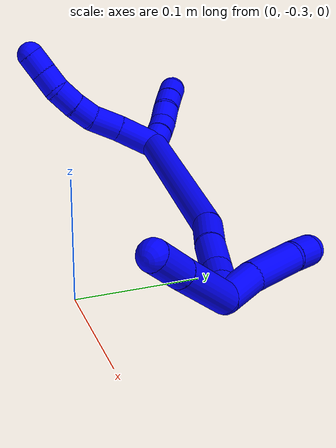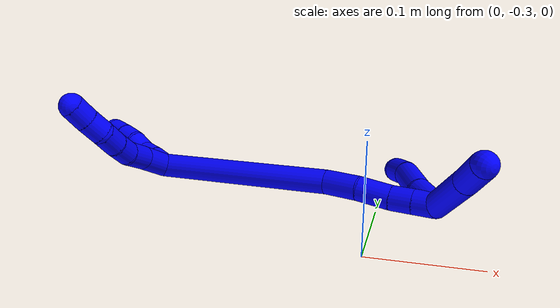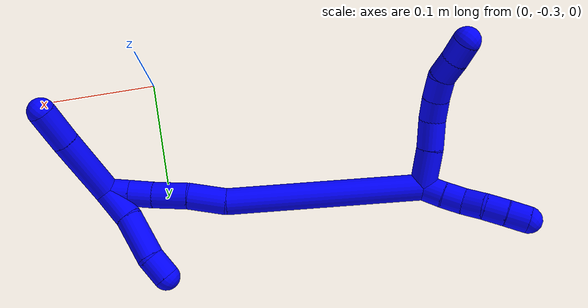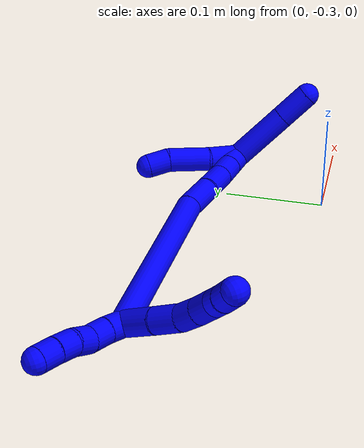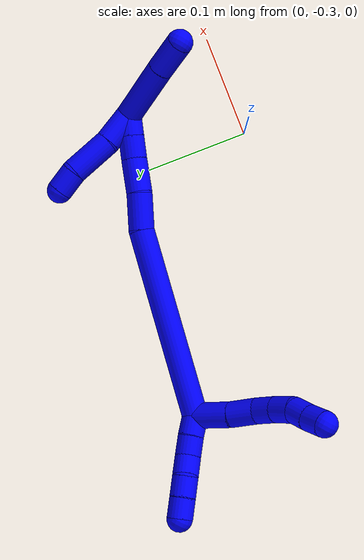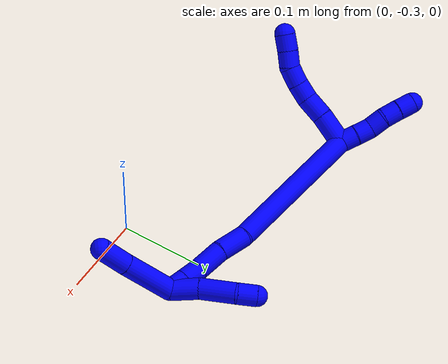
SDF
<sdf version="1.7">
 <world name="default">
  <model name="1">
   <static>0</static>
   <link name="1">
    <collision name="collision-cylinder-e_1_2_8">
     <pose>-0.004849 0.01581 0.009548 -1.0275 -0.256759 0.145432</pose>
     <geometry><cylinder><radius>0.0125</radius><length>0.038191</length></cylinder></geometry>
     <surface>
      <friction><ode><mu>1.16</mu><mu2>1.16</mu2><slip1>0</slip1><slip2>0</slip2></ode></friction>
      <contact><ode><kp>1e+06</kp><kd>1</kd><max_vel>0</max_vel><min_depth>0.001</min_depth></ode></contact>
     </surface>
    </collision>
    <visual name="visual-cylinder-e_1_2_8">
     <pose>-0.004849 0.01581 0.009548 -1.0275 -0.256759 0.145432</pose>
     <geometry><cylinder><radius>0.0125</radius><length>0.038191</length></cylinder></geometry>
     <material><ambient>0 0 1 1</ambient></material>
    </visual>
    <collision name="collision-cylinder-e_2_8_9">
     <pose>-0.013215 0.042256 0.027252 -0.916616 -0.25656 0.127099</pose>
     <geometry><cylinder><radius>0.0125</radius><length>0.027713</length></cylinder></geometry>
     <surface>
      <friction><ode><mu>1.16</mu><mu2>1.16</mu2><slip1>0</slip1><slip2>0</slip2></ode></friction>
      <contact><ode><kp>1e+06</kp><kd>1</kd><max_vel>0</max_vel><min_depth>0.001</min_depth></ode></contact>
     </surface>
    </collision>
    <visual name="visual-cylinder-e_2_8_9">
     <pose>-0.013215 0.042256 0.027252 -0.916616 -0.25656 0.127099</pose>
     <geometry><cylinder><radius>0.0125</radius><length>0.027713</length></cylinder></geometry>
     <material><ambient>0 0 1 1</ambient></material>
    </visual>
    <collision name="collision-cylinder-e_3_9_10">
     <pose>-0.017216 0.062154 0.040633 -1.05717 -0.045619 0.026645</pose>
     <geometry><cylinder><radius>0.0125</radius><length>0.021292</length></cylinder></geometry>
     <surface>
      <friction><ode><mu>1.16</mu><mu2>1.16</mu2><slip1>0</slip1><slip2>0</slip2></ode></friction>
      <contact><ode><kp>1e+06</kp><kd>1</kd><max_vel>0</max_vel><min_depth>0.001</min_depth></ode></contact>
     </surface>
    </collision>
    <visual name="visual-cylinder-e_3_9_10">
     <pose>-0.017216 0.062154 0.040633 -1.05717 -0.045619 0.026645</pose>
     <geometry><cylinder><radius>0.0125</radius><length>0.021292</length></cylinder></geometry>
     <material><ambient>0 0 1 1</ambient></material>
    </visual>
    <collision name="collision-cylinder-e_4_10_11">
     <pose>-0.01752 0.081551 0.050382 -1.15095 0.016368 -0.010618</pose>
     <geometry><cylinder><radius>0.0125</radius><length>0.022199</length></cylinder></geometry>
     <surface>
      <friction><ode><mu>1.16</mu><mu2>1.16</mu2><slip1>0</slip1><slip2>0</slip2></ode></friction>
      <contact><ode><kp>1e+06</kp><kd>1</kd><max_vel>0</max_vel><min_depth>0.001</min_depth></ode></contact>
     </surface>
    </collision>
    <visual name="visual-cylinder-e_4_10_11">
     <pose>-0.01752 0.081551 0.050382 -1.15095 0.016368 -0.010618</pose>
     <geometry><cylinder><radius>0.0125</radius><length>0.022199</length></cylinder></geometry>
     <material><ambient>0 0 1 1</ambient></material>
    </visual>
    <collision name="collision-cylinder-e_5_11_12">
     <pose>-0.017479 0.101751 0.055641 -1.49795 -0.01391 0.012932</pose>
     <geometry><cylinder><radius>0.0125</radius><length>0.020186</length></cylinder></geometry>
     <surface>
      <friction><ode><mu>1.16</mu><mu2>1.16</mu2><slip1>0</slip1><slip2>0</slip2></ode></friction>
      <contact><ode><kp>1e+06</kp><kd>1</kd><max_vel>0</max_vel><min_depth>0.001</min_depth></ode></contact>
     </surface>
    </collision>
    <visual name="visual-cylinder-e_5_11_12">
     <pose>-0.017479 0.101751 0.055641 -1.49795 -0.01391 0.012932</pose>
     <geometry><cylinder><radius>0.0125</radius><length>0.020186</length></cylinder></geometry>
     <material><ambient>0 0 1 1</ambient></material>
    </visual>
    <collision name="collision-cylinder-e_6_12_6">
     <pose>-0.017171 0.121914 0.057812 -1.42942 0.043931 -0.038123</pose>
     <geometry><cylinder><radius>0.0125</radius><length>0.020419</length></cylinder></geometry>
     <surface>
      <friction><ode><mu>1.16</mu><mu2>1.16</mu2><slip1>0</slip1><slip2>0</slip2></ode></friction>
      <contact><ode><kp>1e+06</kp><kd>1</kd><max_vel>0</max_vel><min_depth>0.001</min_depth></ode></contact>
     </surface>
    </collision>
    <visual name="visual-cylinder-e_6_12_6">
     <pose>-0.017171 0.121914 0.057812 -1.42942 0.043931 -0.038123</pose>
     <geometry><cylinder><radius>0.0125</radius><length>0.020419</length></cylinder></geometry>
     <material><ambient>0 0 1 1</ambient></material>
    </visual>
    <collision name="collision-cylinder-e_1_2_13">
     <pose>-0.000308 0.003693 -0.009288 -2.76315 -0.030836 0.160679</pose>
     <geometry><cylinder><radius>0.0125</radius><length>0.02</length></cylinder></geometry>
     <surface>
      <friction><ode><mu>1.16</mu><mu2>1.16</mu2><slip1>0</slip1><slip2>0</slip2></ode></friction>
      <contact><ode><kp>1e+06</kp><kd>1</kd><max_vel>0</max_vel><min_depth>0.001</min_depth></ode></contact>
     </surface>
    </collision>
    <visual name="visual-cylinder-e_1_2_13">
     <pose>-0.000308 0.003693 -0.009288 -2.76315 -0.030836 0.160679</pose>
     <geometry><cylinder><radius>0.0125</radius><length>0.02</length></cylinder></geometry>
     <material><ambient>0 0 1 1</ambient></material>
    </visual>
    <collision name="collision-cylinder-e_2_13_14">
     <pose>-0.001798 0.011089 -0.02779 -2.75945 -0.118448 0.59488</pose>
     <geometry><cylinder><radius>0.0125</radius><length>0.02</length></cylinder></geometry>
     <surface>
      <friction><ode><mu>1.16</mu><mu2>1.16</mu2><slip1>0</slip1><slip2>0</slip2></ode></friction>
      <contact><ode><kp>1e+06</kp><kd>1</kd><max_vel>0</max_vel><min_depth>0.001</min_depth></ode></contact>
     </surface>
    </collision>
    <visual name="visual-cylinder-e_2_13_14">
     <pose>-0.001798 0.011089 -0.02779 -2.75945 -0.118448 0.59488</pose>
     <geometry><cylinder><radius>0.0125</radius><length>0.02</length></cylinder></geometry>
     <material><ambient>0 0 1 1</ambient></material>
    </visual>
    <collision name="collision-cylinder-e_3_14_15">
     <pose>-0.001998 0.020477 -0.045171 -2.53358 0.098384 -0.31131</pose>
     <geometry><cylinder><radius>0.0125</radius><length>0.02</length></cylinder></geometry>
     <surface>
      <friction><ode><mu>1.16</mu><mu2>1.16</mu2><slip1>0</slip1><slip2>0</slip2></ode></friction>
      <contact><ode><kp>1e+06</kp><kd>1</kd><max_vel>0</max_vel><min_depth>0.001</min_depth></ode></contact>
     </surface>
    </collision>
    <visual name="visual-cylinder-e_3_14_15">
     <pose>-0.001998 0.020477 -0.045171 -2.53358 0.098384 -0.31131</pose>
     <geometry><cylinder><radius>0.0125</radius><length>0.02</length></cylinder></geometry>
     <material><ambient>0 0 1 1</ambient></material>
    </visual>
    <collision name="collision-cylinder-e_4_15_16">
     <pose>-0.001767 0.030452 -0.062341 -2.69681 -0.075194 0.329661</pose>
     <geometry><cylinder><radius>0.0125</radius><length>0.02</length></cylinder></geometry>
     <surface>
      <friction><ode><mu>1.16</mu><mu2>1.16</mu2><slip1>0</slip1><slip2>0</slip2></ode></friction>
      <contact><ode><kp>1e+06</kp><kd>1</kd><max_vel>0</max_vel><min_depth>0.001</min_depth></ode></contact>
     </surface>
    </collision>
    <visual name="visual-cylinder-e_4_15_16">
     <pose>-0.001767 0.030452 -0.062341 -2.69681 -0.075194 0.329661</pose>
     <geometry><cylinder><radius>0.0125</radius><length>0.02</length></cylinder></geometry>
     <material><ambient>0 0 1 1</ambient></material>
    </visual>
    <collision name="collision-cylinder-e_5_16_5">
     <pose>-0.003749 0.038541 -0.080511 -2.74877 -0.123391 0.602049</pose>
     <geometry><cylinder><radius>0.0125</radius><length>0.02</length></cylinder></geometry>
     <surface>
      <friction><ode><mu>1.16</mu><mu2>1.16</mu2><slip1>0</slip1><slip2>0</slip2></ode></friction>
      <contact><ode><kp>1e+06</kp><kd>1</kd><max_vel>0</max_vel><min_depth>0.001</min_depth></ode></contact>
     </surface>
    </collision>
    <visual name="visual-cylinder-e_5_16_5">
     <pose>-0.003749 0.038541 -0.080511 -2.74877 -0.123391 0.602049</pose>
     <geometry><cylinder><radius>0.0125</radius><length>0.02</length></cylinder></geometry>
     <material><ambient>0 0 1 1</ambient></material>
    </visual>
    <collision name="collision-cylinder-e_1_2_17">
     <pose>0.046159 -0.046211 0.066437 0.60774 0.51835 0.165904</pose>
     <geometry><cylinder><radius>0.0125</radius><length>0.186333</length></cylinder></geometry>
     <surface>
      <friction><ode><mu>1.16</mu><mu2>1.16</mu2><slip1>0</slip1><slip2>0</slip2></ode></friction>
      <contact><ode><kp>1e+06</kp><kd>1</kd><max_vel>0</max_vel><min_depth>0.001</min_depth></ode></contact>
     </surface>
    </collision>
    <visual name="visual-cylinder-e_1_2_17">
     <pose>0.046159 -0.046211 0.066437 0.60774 0.51835 0.165904</pose>
     <geometry><cylinder><radius>0.0125</radius><length>0.186333</length></cylinder></geometry>
     <material><ambient>0 0 1 1</ambient></material>
    </visual>
    <collision name="collision-cylinder-e_2_17_18">
     <pose>0.098671 -0.099491 0.148194 0.432341 0.360128 0.079908</pose>
     <geometry><cylinder><radius>0.0125</radius><length>0.036056</length></cylinder></geometry>
     <surface>
      <friction><ode><mu>1.16</mu><mu2>1.16</mu2><slip1>0</slip1><slip2>0</slip2></ode></friction>
      <contact><ode><kp>1e+06</kp><kd>1</kd><max_vel>0</max_vel><min_depth>0.001</min_depth></ode></contact>
     </surface>
    </collision>
    <visual name="visual-cylinder-e_2_17_18">
     <pose>0.098671 -0.099491 0.148194 0.432341 0.360128 0.079908</pose>
     <geometry><cylinder><radius>0.0125</radius><length>0.036056</length></cylinder></geometry>
     <material><ambient>0 0 1 1</ambient></material>
    </visual>
    <collision name="collision-cylinder-e_3_18_19">
     <pose>0.110609 -0.115534 0.176759 0.595403 0.335797 0.103915</pose>
     <geometry><cylinder><radius>0.0125</radius><length>0.033893</length></cylinder></geometry>
     <surface>
      <friction><ode><mu>1.16</mu><mu2>1.16</mu2><slip1>0</slip1><slip2>0</slip2></ode></friction>
      <contact><ode><kp>1e+06</kp><kd>1</kd><max_vel>0</max_vel><min_depth>0.001</min_depth></ode></contact>
     </surface>
    </collision>
    <visual name="visual-cylinder-e_3_18_19">
     <pose>0.110609 -0.115534 0.176759 0.595403 0.335797 0.103915</pose>
     <geometry><cylinder><radius>0.0125</radius><length>0.033893</length></cylinder></geometry>
     <material><ambient>0 0 1 1</ambient></material>
    </visual>
    <collision name="collision-cylinder-e_4_19_20">
     <pose>0.120719 -0.129348 0.199184 0.485307 0.411324 0.103184</pose>
     <geometry><cylinder><radius>0.0125</radius><length>0.022641</length></cylinder></geometry>
     <surface>
      <friction><ode><mu>1.16</mu><mu2>1.16</mu2><slip1>0</slip1><slip2>0</slip2></ode></friction>
      <contact><ode><kp>1e+06</kp><kd>1</kd><max_vel>0</max_vel><min_depth>0.001</min_depth></ode></contact>
     </surface>
    </collision>
    <visual name="visual-cylinder-e_4_19_20">
     <pose>0.120719 -0.129348 0.199184 0.485307 0.411324 0.103184</pose>
     <geometry><cylinder><radius>0.0125</radius><length>0.022641</length></cylinder></geometry>
     <material><ambient>0 0 1 1</ambient></material>
    </visual>
    <collision name="collision-cylinder-e_5_20_1">
     <pose>0.129461 -0.138693 0.216906 0.485306 0.411566 0.103246</pose>
     <geometry><cylinder><radius>0.0125</radius><length>0.021076</length></cylinder></geometry>
     <surface>
      <friction><ode><mu>1.16</mu><mu2>1.16</mu2><slip1>0</slip1><slip2>0</slip2></ode></friction>
      <contact><ode><kp>1e+06</kp><kd>1</kd><max_vel>0</max_vel><min_depth>0.001</min_depth></ode></contact>
     </surface>
    </collision>
    <visual name="visual-cylinder-e_5_20_1">
     <pose>0.129461 -0.138693 0.216906 0.485306 0.411566 0.103246</pose>
     <geometry><cylinder><radius>0.0125</radius><length>0.021076</length></cylinder></geometry>
     <material><ambient>0 0 1 1</ambient></material>
    </visual>
    <collision name="collision-cylinder-e_1_1_21">
     <pose>0.137461 -0.142969 0.209029 -3.12758 0.226478 -3.01857</pose>
     <geometry><cylinder><radius>0.0125</radius><length>0.033704</length></cylinder></geometry>
     <surface>
      <friction><ode><mu>1.16</mu><mu2>1.16</mu2><slip1>0</slip1><slip2>0</slip2></ode></friction>
      <contact><ode><kp>1e+06</kp><kd>1</kd><max_vel>0</max_vel><min_depth>0.001</min_depth></ode></contact>
     </surface>
    </collision>
    <visual name="visual-cylinder-e_1_1_21">
     <pose>0.137461 -0.142969 0.209029 -3.12758 0.226478 -3.01857</pose>
     <geometry><cylinder><radius>0.0125</radius><length>0.033704</length></cylinder></geometry>
     <material><ambient>0 0 1 1</ambient></material>
    </visual>
    <collision name="collision-cylinder-e_2_21_22">
     <pose>0.148317 -0.145775 0.172376 2.99261 0.332835 2.30541</pose>
     <geometry><cylinder><radius>0.0125</radius><length>0.043293</length></cylinder></geometry>
     <surface>
      <friction><ode><mu>1.16</mu><mu2>1.16</mu2><slip1>0</slip1><slip2>0</slip2></ode></friction>
      <contact><ode><kp>1e+06</kp><kd>1</kd><max_vel>0</max_vel><min_depth>0.001</min_depth></ode></contact>
     </surface>
    </collision>
    <visual name="visual-cylinder-e_2_21_22">
     <pose>0.148317 -0.145775 0.172376 2.99261 0.332835 2.30541</pose>
     <geometry><cylinder><radius>0.0125</radius><length>0.043293</length></cylinder></geometry>
     <material><ambient>0 0 1 1</ambient></material>
    </visual>
    <collision name="collision-cylinder-e_3_22_4">
     <pose>0.156124 -0.150819 0.140843 2.96584 0.063911 0.696104</pose>
     <geometry><cylinder><radius>0.0125</radius><length>0.023003</length></cylinder></geometry>
     <surface>
      <friction><ode><mu>1.16</mu><mu2>1.16</mu2><slip1>0</slip1><slip2>0</slip2></ode></friction>
      <contact><ode><kp>1e+06</kp><kd>1</kd><max_vel>0</max_vel><min_depth>0.001</min_depth></ode></contact>
     </surface>
    </collision>
    <visual name="visual-cylinder-e_3_22_4">
     <pose>0.156124 -0.150819 0.140843 2.96584 0.063911 0.696104</pose>
     <geometry><cylinder><radius>0.0125</radius><length>0.023003</length></cylinder></geometry>
     <material><ambient>0 0 1 1</ambient></material>
    </visual>
    <collision name="collision-cylinder-e_1_1_23">
     <pose>0.142916 -0.125591 0.250948 -0.604321 0.289773 -0.090898</pose>
     <geometry><cylinder><radius>0.0125</radius><length>0.064672</length></cylinder></geometry>
     <surface>
      <friction><ode><mu>1.16</mu><mu2>1.16</mu2><slip1>0</slip1><slip2>0</slip2></ode></friction>
      <contact><ode><kp>1e+06</kp><kd>1</kd><max_vel>0</max_vel><min_depth>0.001</min_depth></ode></contact>
     </surface>
    </collision>
    <visual name="visual-cylinder-e_1_1_23">
     <pose>0.142916 -0.125591 0.250948 -0.604321 0.289773 -0.090898</pose>
     <geometry><cylinder><radius>0.0125</radius><length>0.064672</length></cylinder></geometry>
     <material><ambient>0 0 1 1</ambient></material>
    </visual>
    <collision name="collision-cylinder-e_2_23_3">
     <pose>0.157095 -0.09778 0.289994 -0.645575 0.283389 -0.095357</pose>
     <geometry><cylinder><radius>0.0125</radius><length>0.035328</length></cylinder></geometry>
     <surface>
      <friction><ode><mu>1.16</mu><mu2>1.16</mu2><slip1>0</slip1><slip2>0</slip2></ode></friction>
      <contact><ode><kp>1e+06</kp><kd>1</kd><max_vel>0</max_vel><min_depth>0.001</min_depth></ode></contact>
     </surface>
    </collision>
    <visual name="visual-cylinder-e_2_23_3">
     <pose>0.157095 -0.09778 0.289994 -0.645575 0.283389 -0.095357</pose>
     <geometry><cylinder><radius>0.0125</radius><length>0.035328</length></cylinder></geometry>
     <material><ambient>0 0 1 1</ambient></material>
    </visual>
    <collision name="collision-sphere-3">
     <pose>0.162034 -0.087576 0.303541 0 -0 0</pose>
     <geometry><sphere><radius>0.0125</radius></sphere></geometry>
     <surface>
      <friction><ode><mu>1.16</mu><mu2>1.16</mu2><slip1>0</slip1><slip2>0</slip2></ode></friction>
      <contact><ode><kp>1e+06</kp><kd>1</kd><max_vel>0</max_vel><min_depth>0.001</min_depth></ode></contact>
     </surface>
    </collision>
    <visual name="visual-sphere-3">
     <pose>0.162034 -0.087576 0.303541 0 -0 0</pose>
     <geometry><sphere><radius>0.0125</radius></sphere></geometry>
     <material><ambient>0 0 1 1</ambient></material>
    </visual>
    <collision name="collision-sphere-23">
     <pose>0.152156 -0.107984 0.276448 0 -0 0</pose>
     <geometry><sphere><radius>0.0125</radius></sphere></geometry>
     <surface>
      <friction><ode><mu>1.16</mu><mu2>1.16</mu2><slip1>0</slip1><slip2>0</slip2></ode></friction>
      <contact><ode><kp>1e+06</kp><kd>1</kd><max_vel>0</max_vel><min_depth>0.001</min_depth></ode></contact>
     </surface>
    </collision>
    <visual name="visual-sphere-23">
     <pose>0.152156 -0.107984 0.276448 0 -0 0</pose>
     <geometry><sphere><radius>0.0125</radius></sphere></geometry>
     <material><ambient>0 0 1 1</ambient></material>
    </visual>
    <collision name="collision-sphere-4">
     <pose>0.156859 -0.152826 0.129542 0 -0 0</pose>
     <geometry><sphere><radius>0.0125</radius></sphere></geometry>
     <surface>
      <friction><ode><mu>1.16</mu><mu2>1.16</mu2><slip1>0</slip1><slip2>0</slip2></ode></friction>
      <contact><ode><kp>1e+06</kp><kd>1</kd><max_vel>0</max_vel><min_depth>0.001</min_depth></ode></contact>
     </surface>
    </collision>
    <visual name="visual-sphere-4">
     <pose>0.156859 -0.152826 0.129542 0 -0 0</pose>
     <geometry><sphere><radius>0.0125</radius></sphere></geometry>
     <material><ambient>0 0 1 1</ambient></material>
    </visual>
    <collision name="collision-sphere-22">
     <pose>0.15539 -0.148812 0.152144 0 -0 0</pose>
     <geometry><sphere><radius>0.0125</radius></sphere></geometry>
     <surface>
      <friction><ode><mu>1.16</mu><mu2>1.16</mu2><slip1>0</slip1><slip2>0</slip2></ode></friction>
      <contact><ode><kp>1e+06</kp><kd>1</kd><max_vel>0</max_vel><min_depth>0.001</min_depth></ode></contact>
     </surface>
    </collision>
    <visual name="visual-sphere-22">
     <pose>0.15539 -0.148812 0.152144 0 -0 0</pose>
     <geometry><sphere><radius>0.0125</radius></sphere></geometry>
     <material><ambient>0 0 1 1</ambient></material>
    </visual>
    <collision name="collision-sphere-21">
     <pose>0.141245 -0.142739 0.192608 0 -0 0</pose>
     <geometry><sphere><radius>0.0125</radius></sphere></geometry>
     <surface>
      <friction><ode><mu>1.16</mu><mu2>1.16</mu2><slip1>0</slip1><slip2>0</slip2></ode></friction>
      <contact><ode><kp>1e+06</kp><kd>1</kd><max_vel>0</max_vel><min_depth>0.001</min_depth></ode></contact>
     </surface>
    </collision>
    <visual name="visual-sphere-21">
     <pose>0.141245 -0.142739 0.192608 0 -0 0</pose>
     <geometry><sphere><radius>0.0125</radius></sphere></geometry>
     <material><ambient>0 0 1 1</ambient></material>
    </visual>
    <collision name="collision-sphere-1">
     <pose>0.133677 -0.143199 0.225449 0 -0 0</pose>
     <geometry><sphere><radius>0.0125</radius></sphere></geometry>
     <surface>
      <friction><ode><mu>1.16</mu><mu2>1.16</mu2><slip1>0</slip1><slip2>0</slip2></ode></friction>
      <contact><ode><kp>1e+06</kp><kd>1</kd><max_vel>0</max_vel><min_depth>0.001</min_depth></ode></contact>
     </surface>
    </collision>
    <visual name="visual-sphere-1">
     <pose>0.133677 -0.143199 0.225449 0 -0 0</pose>
     <geometry><sphere><radius>0.0125</radius></sphere></geometry>
     <material><ambient>0 0 1 1</ambient></material>
    </visual>
    <collision name="collision-sphere-12">
     <pose>-0.017619 0.111816 0.056375 0 -0 0</pose>
     <geometry><sphere><radius>0.0125</radius></sphere></geometry>
     <surface>
      <friction><ode><mu>1.16</mu><mu2>1.16</mu2><slip1>0</slip1><slip2>0</slip2></ode></friction>
      <contact><ode><kp>1e+06</kp><kd>1</kd><max_vel>0</max_vel><min_depth>0.001</min_depth></ode></contact>
     </surface>
    </collision>
    <visual name="visual-sphere-12">
     <pose>-0.017619 0.111816 0.056375 0 -0 0</pose>
     <geometry><sphere><radius>0.0125</radius></sphere></geometry>
     <material><ambient>0 0 1 1</ambient></material>
    </visual>
    <collision name="collision-sphere-11">
     <pose>-0.017338 0.091685 0.054906 0 -0 0</pose>
     <geometry><sphere><radius>0.0125</radius></sphere></geometry>
     <surface>
      <friction><ode><mu>1.16</mu><mu2>1.16</mu2><slip1>0</slip1><slip2>0</slip2></ode></friction>
      <contact><ode><kp>1e+06</kp><kd>1</kd><max_vel>0</max_vel><min_depth>0.001</min_depth></ode></contact>
     </surface>
    </collision>
    <visual name="visual-sphere-11">
     <pose>-0.017338 0.091685 0.054906 0 -0 0</pose>
     <geometry><sphere><radius>0.0125</radius></sphere></geometry>
     <material><ambient>0 0 1 1</ambient></material>
    </visual>
    <collision name="collision-sphere-10">
     <pose>-0.017702 0.071417 0.045858 0 -0 0</pose>
     <geometry><sphere><radius>0.0125</radius></sphere></geometry>
     <surface>
      <friction><ode><mu>1.16</mu><mu2>1.16</mu2><slip1>0</slip1><slip2>0</slip2></ode></friction>
      <contact><ode><kp>1e+06</kp><kd>1</kd><max_vel>0</max_vel><min_depth>0.001</min_depth></ode></contact>
     </surface>
    </collision>
    <visual name="visual-sphere-10">
     <pose>-0.017702 0.071417 0.045858 0 -0 0</pose>
     <geometry><sphere><radius>0.0125</radius></sphere></geometry>
     <material><ambient>0 0 1 1</ambient></material>
    </visual>
    <collision name="collision-sphere-9">
     <pose>-0.016731 0.052892 0.035408 0 -0 0</pose>
     <geometry><sphere><radius>0.0125</radius></sphere></geometry>
     <surface>
      <friction><ode><mu>1.16</mu><mu2>1.16</mu2><slip1>0</slip1><slip2>0</slip2></ode></friction>
      <contact><ode><kp>1e+06</kp><kd>1</kd><max_vel>0</max_vel><min_depth>0.001</min_depth></ode></contact>
     </surface>
    </collision>
    <visual name="visual-sphere-9">
     <pose>-0.016731 0.052892 0.035408 0 -0 0</pose>
     <geometry><sphere><radius>0.0125</radius></sphere></geometry>
     <material><ambient>0 0 1 1</ambient></material>
    </visual>
    <collision name="collision-sphere-2">
     <geometry><sphere><radius>0.0125</radius></sphere></geometry>
     <surface>
      <friction><ode><mu>1.16</mu><mu2>1.16</mu2><slip1>0</slip1><slip2>0</slip2></ode></friction>
      <contact><ode><kp>1e+06</kp><kd>1</kd><max_vel>0</max_vel><min_depth>0.001</min_depth></ode></contact>
     </surface>
    </collision>
    <visual name="visual-sphere-2">
     <geometry><sphere><radius>0.0125</radius></sphere></geometry>
     <material><ambient>0 0 1 1</ambient></material>
    </visual>
    <collision name="collision-sphere-19">
     <pose>0.116193 -0.124507 0.190006 0 -0 0</pose>
     <geometry><sphere><radius>0.0125</radius></sphere></geometry>
     <surface>
      <friction><ode><mu>1.16</mu><mu2>1.16</mu2><slip1>0</slip1><slip2>0</slip2></ode></friction>
      <contact><ode><kp>1e+06</kp><kd>1</kd><max_vel>0</max_vel><min_depth>0.001</min_depth></ode></contact>
     </surface>
    </collision>
    <visual name="visual-sphere-19">
     <pose>0.116193 -0.124507 0.190006 0 -0 0</pose>
     <geometry><sphere><radius>0.0125</radius></sphere></geometry>
     <material><ambient>0 0 1 1</ambient></material>
    </visual>
    <collision name="collision-sphere-8">
     <pose>-0.009698 0.03162 0.019096 0 -0 0</pose>
     <geometry><sphere><radius>0.0125</radius></sphere></geometry>
     <surface>
      <friction><ode><mu>1.16</mu><mu2>1.16</mu2><slip1>0</slip1><slip2>0</slip2></ode></friction>
      <contact><ode><kp>1e+06</kp><kd>1</kd><max_vel>0</max_vel><min_depth>0.001</min_depth></ode></contact>
     </surface>
    </collision>
    <visual name="visual-sphere-8">
     <pose>-0.009698 0.03162 0.019096 0 -0 0</pose>
     <geometry><sphere><radius>0.0125</radius></sphere></geometry>
     <material><ambient>0 0 1 1</ambient></material>
    </visual>
    <collision name="collision-sphere-6">
     <pose>-0.016722 0.132012 0.059249 0 -0 0</pose>
     <geometry><sphere><radius>0.0125</radius></sphere></geometry>
     <surface>
      <friction><ode><mu>1.16</mu><mu2>1.16</mu2><slip1>0</slip1><slip2>0</slip2></ode></friction>
      <contact><ode><kp>1e+06</kp><kd>1</kd><max_vel>0</max_vel><min_depth>0.001</min_depth></ode></contact>
     </surface>
    </collision>
    <visual name="visual-sphere-6">
     <pose>-0.016722 0.132012 0.059249 0 -0 0</pose>
     <geometry><sphere><radius>0.0125</radius></sphere></geometry>
     <material><ambient>0 0 1 1</ambient></material>
    </visual>
    <collision name="collision-sphere-13">
     <pose>-0.000617 0.007386 -0.018576 0 -0 0</pose>
     <geometry><sphere><radius>0.0125</radius></sphere></geometry>
     <surface>
      <friction><ode><mu>1.16</mu><mu2>1.16</mu2><slip1>0</slip1><slip2>0</slip2></ode></friction>
      <contact><ode><kp>1e+06</kp><kd>1</kd><max_vel>0</max_vel><min_depth>0.001</min_depth></ode></contact>
     </surface>
    </collision>
    <visual name="visual-sphere-13">
     <pose>-0.000617 0.007386 -0.018576 0 -0 0</pose>
     <geometry><sphere><radius>0.0125</radius></sphere></geometry>
     <material><ambient>0 0 1 1</ambient></material>
    </visual>
    <collision name="collision-sphere-14">
     <pose>-0.00298 0.014792 -0.037003 0 -0 0</pose>
     <geometry><sphere><radius>0.0125</radius></sphere></geometry>
     <surface>
      <friction><ode><mu>1.16</mu><mu2>1.16</mu2><slip1>0</slip1><slip2>0</slip2></ode></friction>
      <contact><ode><kp>1e+06</kp><kd>1</kd><max_vel>0</max_vel><min_depth>0.001</min_depth></ode></contact>
     </surface>
    </collision>
    <visual name="visual-sphere-14">
     <pose>-0.00298 0.014792 -0.037003 0 -0 0</pose>
     <geometry><sphere><radius>0.0125</radius></sphere></geometry>
     <material><ambient>0 0 1 1</ambient></material>
    </visual>
    <collision name="collision-sphere-15">
     <pose>-0.001016 0.026161 -0.05334 0 -0 0</pose>
     <geometry><sphere><radius>0.0125</radius></sphere></geometry>
     <surface>
      <friction><ode><mu>1.16</mu><mu2>1.16</mu2><slip1>0</slip1><slip2>0</slip2></ode></friction>
      <contact><ode><kp>1e+06</kp><kd>1</kd><max_vel>0</max_vel><min_depth>0.001</min_depth></ode></contact>
     </surface>
    </collision>
    <visual name="visual-sphere-15">
     <pose>-0.001016 0.026161 -0.05334 0 -0 0</pose>
     <geometry><sphere><radius>0.0125</radius></sphere></geometry>
     <material><ambient>0 0 1 1</ambient></material>
    </visual>
    <collision name="collision-sphere-16">
     <pose>-0.002518 0.034742 -0.071343 0 -0 0</pose>
     <geometry><sphere><radius>0.0125</radius></sphere></geometry>
     <surface>
      <friction><ode><mu>1.16</mu><mu2>1.16</mu2><slip1>0</slip1><slip2>0</slip2></ode></friction>
      <contact><ode><kp>1e+06</kp><kd>1</kd><max_vel>0</max_vel><min_depth>0.001</min_depth></ode></contact>
     </surface>
    </collision>
    <visual name="visual-sphere-16">
     <pose>-0.002518 0.034742 -0.071343 0 -0 0</pose>
     <geometry><sphere><radius>0.0125</radius></sphere></geometry>
     <material><ambient>0 0 1 1</ambient></material>
    </visual>
    <collision name="collision-sphere-5">
     <pose>-0.00498 0.04234 -0.089679 0 -0 0</pose>
     <geometry><sphere><radius>0.0125</radius></sphere></geometry>
     <surface>
      <friction><ode><mu>1.16</mu><mu2>1.16</mu2><slip1>0</slip1><slip2>0</slip2></ode></friction>
      <contact><ode><kp>1e+06</kp><kd>1</kd><max_vel>0</max_vel><min_depth>0.001</min_depth></ode></contact>
     </surface>
    </collision>
    <visual name="visual-sphere-5">
     <pose>-0.00498 0.04234 -0.089679 0 -0 0</pose>
     <geometry><sphere><radius>0.0125</radius></sphere></geometry>
     <material><ambient>0 0 1 1</ambient></material>
    </visual>
    <collision name="collision-sphere-17">
     <pose>0.092318 -0.092422 0.132874 0 -0 0</pose>
     <geometry><sphere><radius>0.0125</radius></sphere></geometry>
     <surface>
      <friction><ode><mu>1.16</mu><mu2>1.16</mu2><slip1>0</slip1><slip2>0</slip2></ode></friction>
      <contact><ode><kp>1e+06</kp><kd>1</kd><max_vel>0</max_vel><min_depth>0.001</min_depth></ode></contact>
     </surface>
    </collision>
    <visual name="visual-sphere-17">
     <pose>0.092318 -0.092422 0.132874 0 -0 0</pose>
     <geometry><sphere><radius>0.0125</radius></sphere></geometry>
     <material><ambient>0 0 1 1</ambient></material>
    </visual>
    <collision name="collision-sphere-18">
     <pose>0.105024 -0.10656 0.163513 0 -0 0</pose>
     <geometry><sphere><radius>0.0125</radius></sphere></geometry>
     <surface>
      <friction><ode><mu>1.16</mu><mu2>1.16</mu2><slip1>0</slip1><slip2>0</slip2></ode></friction>
      <contact><ode><kp>1e+06</kp><kd>1</kd><max_vel>0</max_vel><min_depth>0.001</min_depth></ode></contact>
     </surface>
    </collision>
    <visual name="visual-sphere-18">
     <pose>0.105024 -0.10656 0.163513 0 -0 0</pose>
     <geometry><sphere><radius>0.0125</radius></sphere></geometry>
     <material><ambient>0 0 1 1</ambient></material>
    </visual>
    <collision name="collision-sphere-20">
     <pose>0.125245 -0.134188 0.208363 0 -0 0</pose>
     <geometry><sphere><radius>0.0125</radius></sphere></geometry>
     <surface>
      <friction><ode><mu>1.16</mu><mu2>1.16</mu2><slip1>0</slip1><slip2>0</slip2></ode></friction>
      <contact><ode><kp>1e+06</kp><kd>1</kd><max_vel>0</max_vel><min_depth>0.001</min_depth></ode></contact>
     </surface>
    </collision>
    <visual name="visual-sphere-20">
     <pose>0.125245 -0.134188 0.208363 0 -0 0</pose>
     <geometry><sphere><radius>0.0125</radius></sphere></geometry>
     <material><ambient>0 0 1 1</ambient></material>
    </visual>
    <inertial>
     <pose>0.064806 -0.048805 0.103896 0 -0 0</pose>
     <mass>0.75</mass>
     <inertia>
      <ixx>0.000622</ixx>
      <ixy>0</ixy>
      <ixz>0</ixz>
      <iyy>0.000608</iyy>
      <iyz>0</iyz>
      <izz>-2.6e-05</izz>
     </inertia>
    </inertial>
   </link>
   <pose>-0.239273 -0.154409 0.012429 1.48424 -0.747727 0.762223</pose>
  </model>
 </world>
</sdf>
